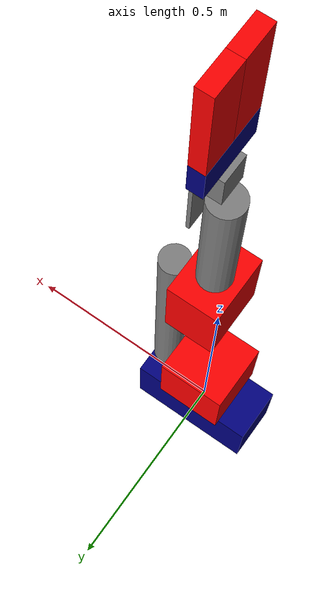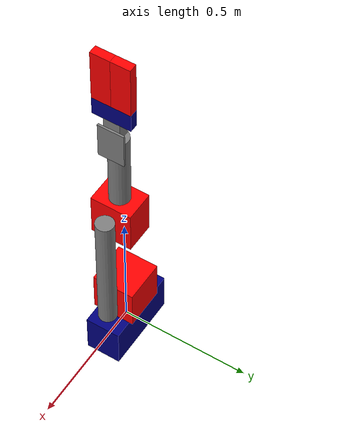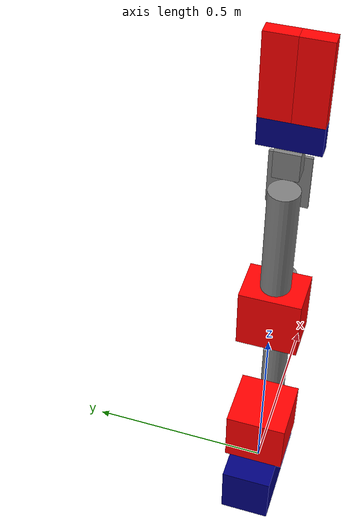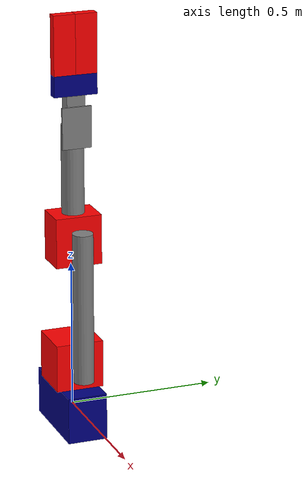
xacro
<?xml version="1.0"?>
<robot xmlns:xacro="http://www.ros.org/wiki/xacro" name="ceres_rover">
    <xacro:arg name="initial_positions_file" default="initial_positions.yaml" />

    <!-- Import ceres_rover urdf file -->
    <xacro:include filename="$(find ceres_urdf)/urdf/ceres.xacro" />

    <!-- Import control_xacro -->
    <xacro:include filename="ceres_rover.ros2_control.xacro" />

    <xacro:ceres_rover_ros2_control name="ArmInterface" initial_positions_file="$(arg initial_positions_file)"/>

</robot>

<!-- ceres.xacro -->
<robot name="ceres_rover" xmlns:xacro="http://www.ros.org/wiki/xacro">

    <material name="blue" >
        <color rgba="0 0 0.5 1"/>
    </material>

    <material name="red">
        <color rgba="1 0 0 1"/>
    </material>

    <material name="grey">
        <color rgba="0.5 0.5 0.5 1"/>
    </material>

    <link name="base_structure_link">
        <visual>
            <geometry>
                <box size="0.30670 0.1600 0.135"/>
            </geometry>
            <origin xyz="0 0 0" rpy="1.57 0 0" />
            <material name="blue"/>
        </visual>
        <collision>
            <geometry>
                <box size="0.30670 0.1600 0.135"/>
            </geometry>
            <material name="blue"/>
        </collision>
    </link>

    <link name="base_pivot_link">
        <visual>
            <geometry>
                <box size="0.1633 0.1633 0.1633"/>
            </geometry>
            <origin xyz="0 0 0" rpy="0 0 0"/>
            <material name="red"/>
        </visual>
        <collision>
            <geometry>
                <box size="0.1633 0.1633 0.1633"/>
            </geometry>
            <material name="red"/>
        </collision>
    </link>

    <link name="bicep_tube_link">
        <visual>
            <geometry>
                <cylinder radius="0.0348" length="0.520"/>
            </geometry>
            <origin xyz="0 0 0.220" rpy="0 0 0"/>
            <material name="grey"/>
        </visual>
        <collision>
            <geometry>
                <cylinder radius="0.0348" length="0.520"/>
            </geometry>
            <material name="grey"/>
        </collision>
    </link>

    <link name="bicep_gearbox_link">
        <visual>
            <geometry>
                <box size="0.11615 0.158 0.170"/>
            </geometry>
            <origin xyz="0 0 0" rpy="0 0 0"/>
            <material name="red"/>
        </visual>
        <collision>
            <geometry>
                <box size="0.11615 0.158 0.170"/>
            </geometry>
            <material name="red"/>
        </collision>
    </link>

   <link name="forearm_tube_link">
        <visual>
            <geometry>
                <cylinder radius="0.03810" length="0.300"/>
            </geometry>
            <origin xyz="0 0 0.150" rpy="0 0 0"/>
            <material name="grey"/>
        </visual>
        <collision>
            <geometry>
                <cylinder radius="0.03810" length="0.300"/>
            </geometry>
            <material name="grey"/>
        </collision>
    </link>

     <link name="bracket_connection_link">
        <visual>
            <geometry>
                <box size="0.008 0.10030 0.14015"/>
            </geometry>
            <origin xyz="0 0 0" rpy="0 0 0"/>
            <material name="grey"/>
        </visual>
        <collision>
            <geometry>
                <box size="0 0 0"/>
            </geometry>
            <material name="grey"/>
        </collision>
    </link>

    <link name="wrist_gearbox_link">
        <visual>
            <geometry>
                <box size="0.04445 0.06200 0.07"/>
            </geometry>
            <origin xyz="0 0 0" rpy="0 0 0"/>
            <material name="grey"/>
        </visual>
        <collision>
            <geometry>
                <box size="0 0 0"/>
            </geometry>
            <material name="grey"/>
        </collision>
    </link>

    <link name="gripper_claw_link">
        <visual>
            <geometry>
                <box size="0.033 0.14759 0.070"/>
            </geometry>
            <origin xyz="0 0 0" rpy="0 0 0"/>
            <material name="blue"/>
        </visual>
        <collision>
            <geometry>
                <box size="0.033 0.14759 0.070"/>
            </geometry>
            <material name="blue"/>
        </collision>
    </link>

    <link name="right_claw_link">
        <visual>
            <geometry>
                <box size="0.033 0.073795 0.200"/>
            </geometry>
            <origin xyz="0 0 0" rpy="0 0 0"/>
            <material name="red"/>
        </visual>
        <collision>
            <geometry>
                <box size="0.033 0.073795 0.200"/>
            </geometry>
            <material name="red"/>
        </collision>
    </link>

    <link name="left_claw_link">
        <visual>
            <geometry>
                <box size="0.033 0.073795 0.200"/>
            </geometry>
            <origin xyz="0 0 0" rpy="0 0 0"/>
            <material name="red"/>
        </visual>
        <collision>
            <geometry>
                <box size="0.033 0.073795 0.200"/>
            </geometry>
            <material name="red"/>
        </collision>
    </link>

    <joint name="joint1" type="continuous">
        <parent link="base_structure_link"/>
        <child link="base_pivot_link"/>
        <origin xyz="0 0 0.1618" rpy="0 0 0"/>
        <axis xyz="0 0 1"/>
    </joint>

    <joint name="joint2" type="continuous">
        <parent link="base_pivot_link"/>
        <child link="bicep_tube_link"/>
        <origin xyz="0.11645 0 0" rpy="0 0 0"/>
    </joint>

    <joint name="joint3" type="continuous">
        <parent link="bicep_tube_link"/>
        <child link="bicep_gearbox_link"/>
        <origin xyz="-0.092875 0 0.440" rpy="0 0 0"/>
        <axis xyz="1 0 0"/>
    </joint>

   <joint name="joint4" type="fixed">
        <parent link="bicep_gearbox_link"/>
        <child link="forearm_tube_link"/>
        <origin xyz="0 0 0.085" rpy="0 0 0"/>
        <axis xyz=" 0 0 1"/>
    </joint>

    <joint name="joint5" type="continuous">
        <parent link="forearm_tube_link"/>
        <child link="bracket_connection_link"/>
        <origin xyz="0.0421 0 0.3" rpy="0 0 0"/>
        <axis xyz=" 1 0 0"/>
    </joint>

    <joint name="joint6" type="fixed">
        <parent link="bracket_connection_link"/>
        <child link="wrist_gearbox_link"/>
        <origin xyz="-0.026225 0 0.070075" rpy="0 0 0"/>
    </joint>

    <joint name="joint7" type="fixed">
        <parent link="wrist_gearbox_link"/>
        <child link="gripper_claw_link"/>
        <origin xyz="0.005725 0 0.07" rpy="0 0 0"/>
        <axis xyz="0 0 1"/>
    </joint>

    <joint name="joint8" type="fixed">
        <parent link="gripper_claw_link"/>
        <child link="right_claw_link"/>
        <origin xyz="0 0.036895 0.135" rpy="0 0 0"/>
        <axis xyz="0 1 0"/>
    </joint>

    <joint name="joint9" type="fixed">
        <parent link="gripper_claw_link"/>
        <child link="left_claw_link"/>
        <origin xyz="0 -0.036895 0.135" rpy="0 0 0"/>
        <axis xyz="0 1 0"/>
    </joint>

</robot>
